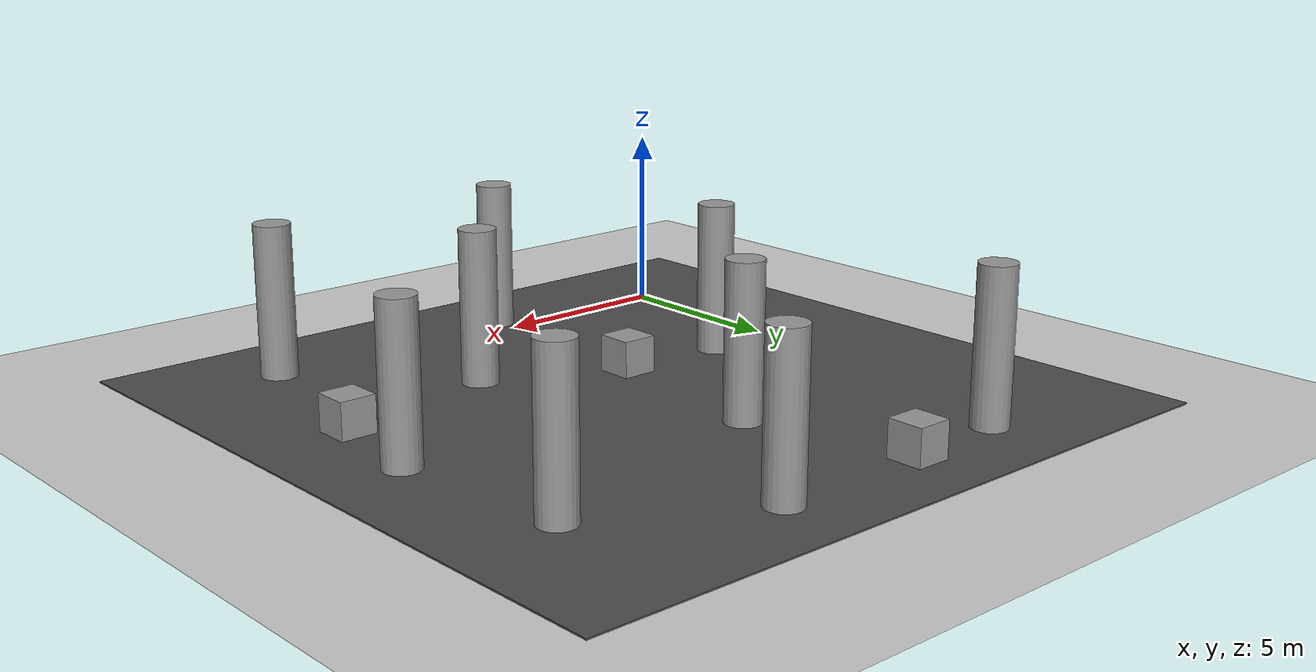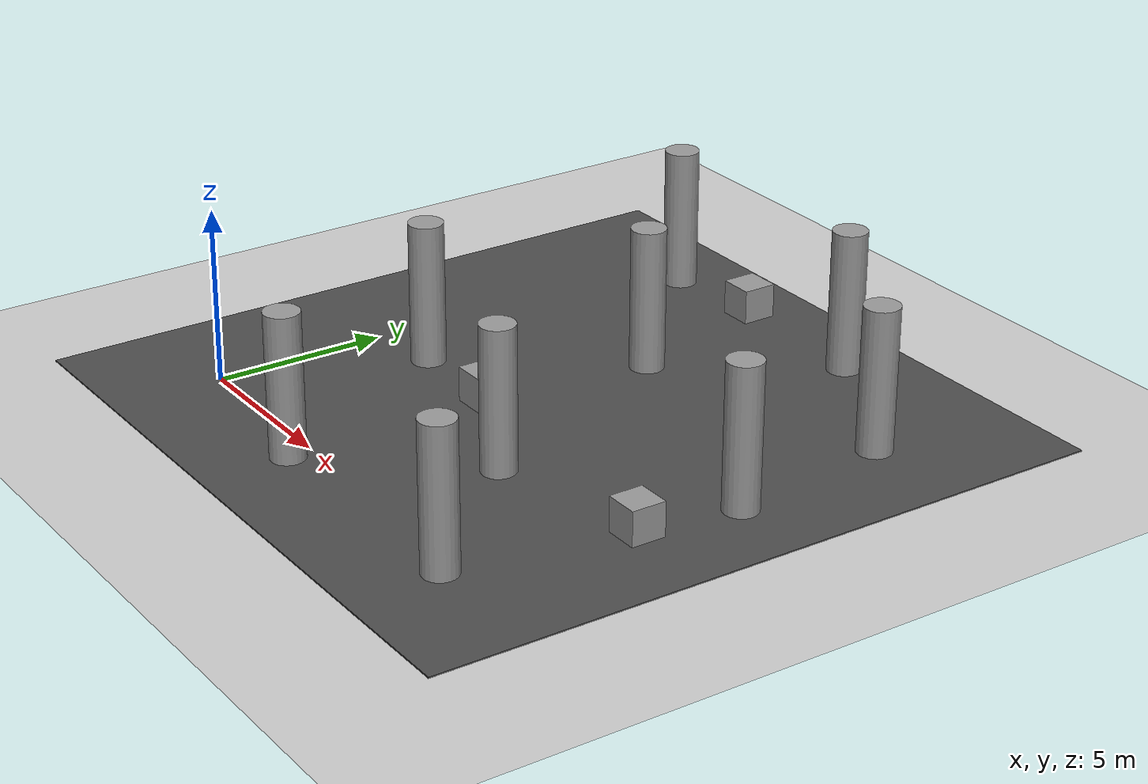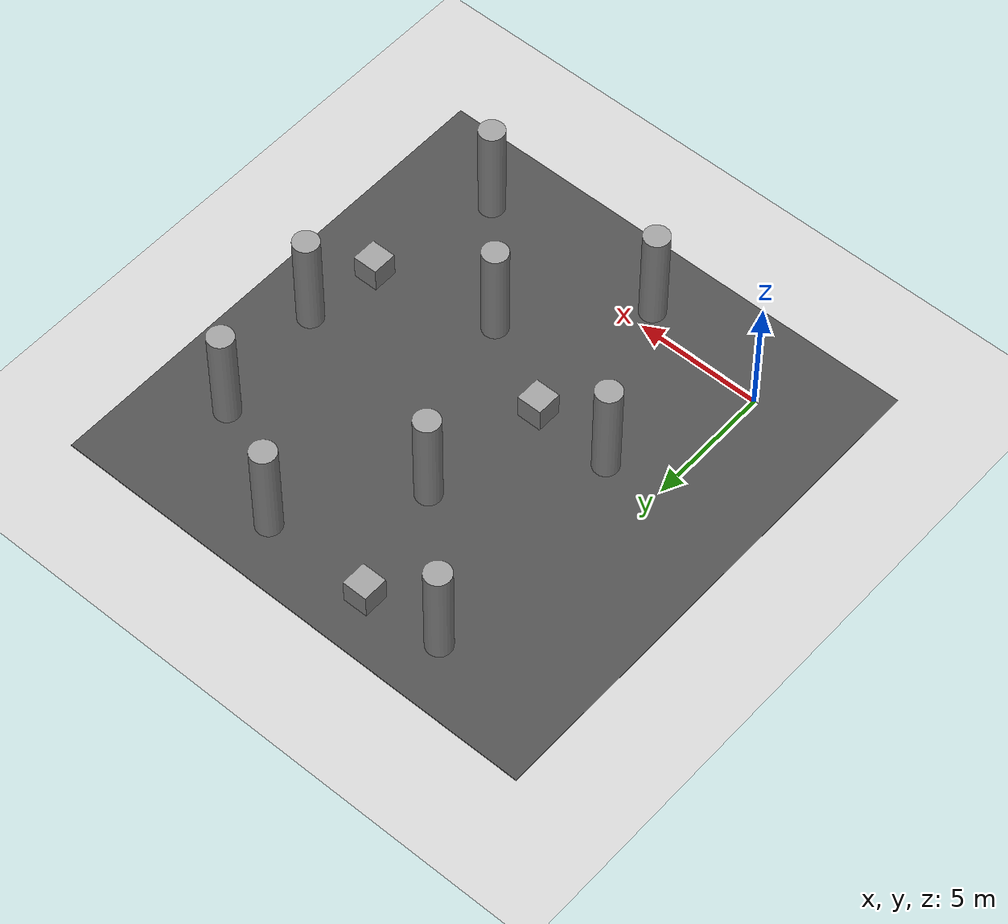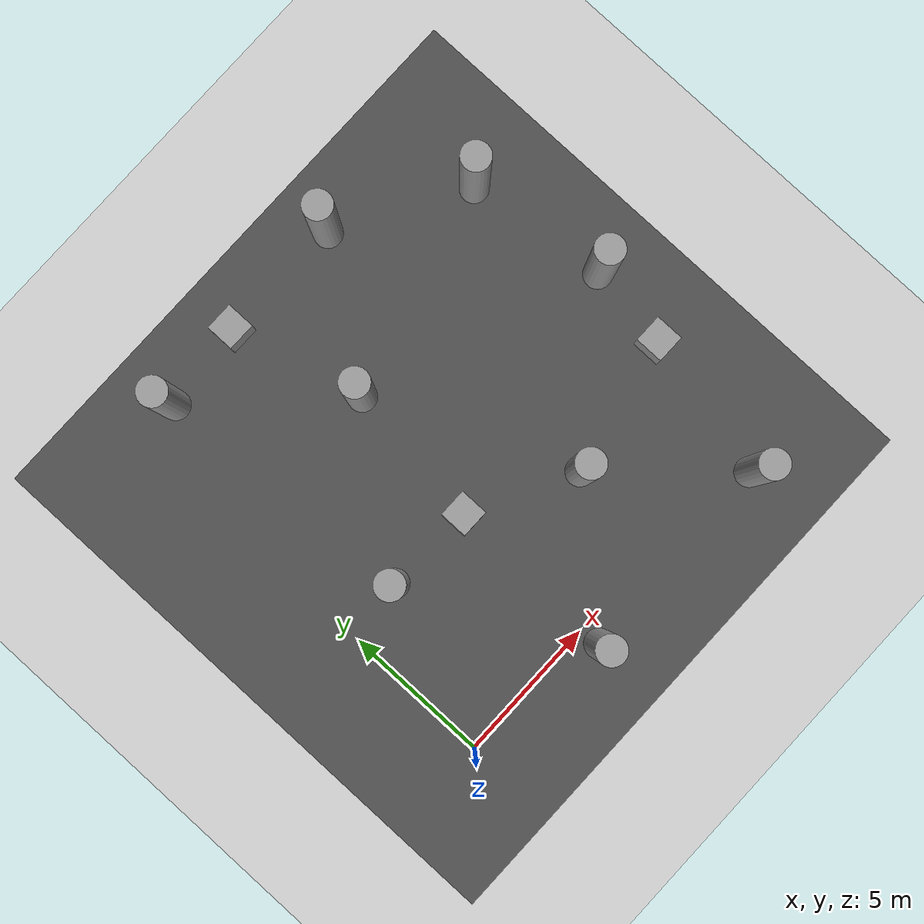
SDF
<sdf version="1.6">
 <world name="default">
  <light name="sun" type="directional">
   <cast_shadows>0</cast_shadows>
   <pose>0 0 10 0 -0 0</pose>
   <diffuse>0.8 0.8 0.8 1</diffuse>
   <specular>0.2 0.2 0.2 1</specular>
   <attenuation>
    <range>1000</range>
    <constant>0.9</constant>
    <linear>0.01</linear>
    <quadratic>0.001</quadratic>
   </attenuation>
   <direction>-0.5 0.1 -0.9</direction>
  </light>
  <model name="ground_plane">
   <static>1</static>
   <link name="link">
    <collision name="collision">
     <geometry><plane><normal>0 0 1</normal><size>100 100</size></plane></geometry>
     <surface><friction><ode><mu>100</mu><mu2>50</mu2></ode></friction></surface>
    </collision>
    <visual name="visual">
     <cast_shadows>0</cast_shadows>
     <geometry><plane><normal>0 0 1</normal><size>100 100</size></plane></geometry>
     <material>
      <script><uri>file://media/materials/scripts/gazebo.material</uri><name>Gazebo/Grey</name></script>
     </material>
    </visual>
   </link>
  </model>
  <gravity>0 0 -9.8</gravity>
  <magnetic_field>6e-06 2.3e-05 -4.2e-05</magnetic_field>
  <atmosphere type="adiabatic"/>
  <physics name="default_physics" default="0" type="ode">
   <max_step_size>0.001</max_step_size>
   <real_time_factor>1</real_time_factor>
   <real_time_update_rate>1000</real_time_update_rate>
  </physics>
  <scene><ambient>0.4 0.4 0.4 1</ambient><background>0.7 0.7 0.7 1</background><shadows>0</shadows></scene>
  <spherical_coordinates>
   <surface_model>EARTH_WGS84</surface_model>
   <latitude_deg>0</latitude_deg>
   <longitude_deg>0</longitude_deg>
   <elevation>0</elevation>
   <heading_deg>0</heading_deg>
  </spherical_coordinates>
  <model name="asphalt_plane">
   <static>1</static>
   <link name="link">
    <collision name="collision"><geometry><box><size>20 20 0.1</size></box></geometry></collision>
    <visual name="visual">
     <cast_shadows>0</cast_shadows>
     <geometry><box><size>20 20 0.1</size></box></geometry>
     <material>
      <script>
       <uri>model://asphalt_plane/materials/scripts</uri>
       <uri>model://asphalt_plane/materials/textures</uri>
       <name>vrc/asphalt</name>
      </script>
     </material>
    </visual>
   </link>
   <pose>6.31642 6.72384 -0.04 0 -0 0</pose>
  </model>
  <model name="unit_cylinder">
   <pose>2.117 5.40159 2.09282 1.1e-05 -4e-06 -0.000222</pose>
   <link name="link">
    <inertial>
     <mass>1</mass>
     <inertia><ixx>0.145833</ixx><ixy>0</ixy><ixz>0</ixz><iyy>0.145833</iyy><iyz>0</iyz><izz>0.125</izz></inertia>
    </inertial>
    <collision name="collision">
     <geometry><cylinder><radius>0.5</radius><length>4.16563</length></cylinder></geometry>
    </collision>
    <visual name="visual">
     <geometry><cylinder><radius>0.5</radius><length>4.16563</length></cylinder></geometry>
     <material>
      <script><name>Gazebo/Grey</name><uri>file://media/materials/scripts/gazebo.material</uri></script>
     </material>
    </visual>
   </link>
  </model>
  <model name="unit_cylinder_clone">
   <pose>8.80034 3.4356 2.09281 9e-06 -4e-06 -0.00023</pose>
   <link name="link">
    <inertial>
     <mass>1</mass>
     <inertia><ixx>0.145833</ixx><ixy>0</ixy><ixz>0</ixz><iyy>0.145833</iyy><iyz>0</iyz><izz>0.125</izz></inertia>
    </inertial>
    <collision name="collision">
     <geometry><cylinder><radius>0.5</radius><length>4.16563</length></cylinder></geometry>
    </collision>
    <visual name="visual">
     <geometry><cylinder><radius>0.5</radius><length>4.16563</length></cylinder></geometry>
     <material>
      <script><name>Gazebo/Grey</name><uri>file://media/materials/scripts/gazebo.material</uri></script>
     </material>
    </visual>
   </link>
  </model>
  <model name="unit_cylinder_clone_0">
   <pose>5.83145 10.2439 2.09281 -1e-06 -0 7.9e-05</pose>
   <link name="link">
    <inertial>
     <mass>1</mass>
     <inertia><ixx>0.145833</ixx><ixy>0</ixy><ixz>0</ixz><iyy>0.145833</iyy><iyz>0</iyz><izz>0.125</izz></inertia>
    </inertial>
    <collision name="collision">
     <geometry><cylinder><radius>0.5</radius><length>4.16563</length></cylinder></geometry>
    </collision>
    <visual name="visual">
     <geometry><cylinder><radius>0.5</radius><length>4.16563</length></cylinder></geometry>
     <material>
      <script><name>Gazebo/Grey</name><uri>file://media/materials/scripts/gazebo.material</uri></script>
     </material>
    </visual>
   </link>
  </model>
  <model name="unit_cylinder_clone_1">
   <pose>13.3159 12.1898 2.09281 0 -1e-06 0.000767</pose>
   <link name="link">
    <inertial>
     <mass>1</mass>
     <inertia><ixx>0.145833</ixx><ixy>0</ixy><ixz>0</ixz><iyy>0.145833</iyy><iyz>0</iyz><izz>0.125</izz></inertia>
    </inertial>
    <collision name="collision">
     <geometry><cylinder><radius>0.5</radius><length>4.16563</length></cylinder></geometry>
    </collision>
    <visual name="visual">
     <geometry><cylinder><radius>0.5</radius><length>4.16563</length></cylinder></geometry>
     <material>
      <script><name>Gazebo/Grey</name><uri>file://media/materials/scripts/gazebo.material</uri></script>
     </material>
    </visual>
   </link>
  </model>
  <model name="unit_cylinder_clone_clone">
   <pose>13.9433 7.32765 2.0928 0 -0 0.000395</pose>
   <link name="link">
    <inertial>
     <mass>1</mass>
     <inertia><ixx>0.145833</ixx><ixy>0</ixy><ixz>0</ixz><iyy>0.145833</iyy><iyz>0</iyz><izz>0.125</izz></inertia>
    </inertial>
    <collision name="collision">
     <geometry><cylinder><radius>0.5</radius><length>4.16563</length></cylinder></geometry>
    </collision>
    <visual name="visual">
     <geometry><cylinder><radius>0.5</radius><length>4.16563</length></cylinder></geometry>
     <material>
      <script><name>Gazebo/Grey</name><uri>file://media/materials/scripts/gazebo.material</uri></script>
     </material>
    </visual>
   </link>
  </model>
  <model name="unit_cylinder_clone_clone_0">
   <pose>1.5681 14.5031 2.09281 1e-06 0 -4.1e-05</pose>
   <link name="link">
    <inertial>
     <mass>1</mass>
     <inertia><ixx>0.145833</ixx><ixy>0</ixy><ixz>0</ixz><iyy>0.145833</iyy><iyz>0</iyz><izz>0.125</izz></inertia>
    </inertial>
    <collision name="collision">
     <geometry><cylinder><radius>0.5</radius><length>4.16563</length></cylinder></geometry>
    </collision>
    <visual name="visual">
     <geometry><cylinder><radius>0.5</radius><length>4.16563</length></cylinder></geometry>
     <material>
      <script><name>Gazebo/Grey</name><uri>file://media/materials/scripts/gazebo.material</uri></script>
     </material>
    </visual>
   </link>
  </model>
  <model name="unit_cylinder_clone_clone_1">
   <pose>9.01153 14.6925 2.09281 1e-06 -1e-06 0.000453</pose>
   <link name="link">
    <inertial>
     <mass>1</mass>
     <inertia><ixx>0.145833</ixx><ixy>0</ixy><ixz>0</ixz><iyy>0.145833</iyy><iyz>0</iyz><izz>0.125</izz></inertia>
    </inertial>
    <collision name="collision">
     <geometry><cylinder><radius>0.5</radius><length>4.16563</length></cylinder></geometry>
    </collision>
    <visual name="visual">
     <geometry><cylinder><radius>0.5</radius><length>4.16563</length></cylinder></geometry>
     <material>
      <script><name>Gazebo/Grey</name><uri>file://media/materials/scripts/gazebo.material</uri></script>
     </material>
    </visual>
   </link>
  </model>
  <model name="unit_cylinder_clone_clone_2">
   <pose>12.4657 -0.591042 2.09282 1.1e-05 -4e-06 -0.000204</pose>
   <link name="link">
    <inertial>
     <mass>1</mass>
     <inertia><ixx>0.145833</ixx><ixy>0</ixy><ixz>0</ixz><iyy>0.145833</iyy><iyz>0</iyz><izz>0.125</izz></inertia>
    </inertial>
    <collision name="collision">
     <geometry><cylinder><radius>0.5</radius><length>4.16563</length></cylinder></geometry>
    </collision>
    <visual name="visual">
     <geometry><cylinder><radius>0.5</radius><length>4.16563</length></cylinder></geometry>
     <material>
      <script><name>Gazebo/Grey</name><uri>file://media/materials/scripts/gazebo.material</uri></script>
     </material>
    </visual>
   </link>
  </model>
  <model name="unit_cylinder_clone_clone_3">
   <pose>5.12336 -0.711677 2.09282 1e-05 -4e-06 -0.00019</pose>
   <link name="link">
    <inertial>
     <mass>1</mass>
     <inertia><ixx>0.145833</ixx><ixy>0</ixy><ixz>0</ixz><iyy>0.145833</iyy><iyz>0</iyz><izz>0.125</izz></inertia>
    </inertial>
    <collision name="collision">
     <geometry><cylinder><radius>0.5</radius><length>4.16563</length></cylinder></geometry>
    </collision>
    <visual name="visual">
     <geometry><cylinder><radius>0.5</radius><length>4.16563</length></cylinder></geometry>
     <material>
      <script><name>Gazebo/Grey</name><uri>file://media/materials/scripts/gazebo.material</uri></script>
     </material>
    </visual>
   </link>
  </model>
  <model name="unit_box">
   <pose>5.24054 5.27226 0.51 0 -0 1e-06</pose>
   <link name="link">
    <inertial>
     <mass>1</mass>
     <inertia>
      <ixx>0.166667</ixx>
      <ixy>0</ixy>
      <ixz>0</ixz>
      <iyy>0.166667</iyy>
      <iyz>0</iyz>
      <izz>0.166667</izz>
     </inertia>
    </inertial>
    <collision name="collision"><geometry><box><size>1 1 1</size></box></geometry></collision>
    <visual name="visual">
     <geometry><box><size>1 1 1</size></box></geometry>
     <material>
      <script><name>Gazebo/Grey</name><uri>file://media/materials/scripts/gazebo.material</uri></script>
     </material>
    </visual>
   </link>
  </model>
  <model name="unit_box_0">
   <pose>4.60386 14.7569 0.51 0 -0 1e-06</pose>
   <link name="link">
    <inertial>
     <mass>1</mass>
     <inertia>
      <ixx>0.166667</ixx>
      <ixy>0</ixy>
      <ixz>0</ixz>
      <iyy>0.166667</iyy>
      <iyz>0</iyz>
      <izz>0.166667</izz>
     </inertia>
    </inertial>
    <collision name="collision"><geometry><box><size>1 1 1</size></box></geometry></collision>
    <visual name="visual">
     <geometry><box><size>1 1 1</size></box></geometry>
     <material>
      <script><name>Gazebo/Grey</name><uri>file://media/materials/scripts/gazebo.material</uri></script>
     </material>
    </visual>
   </link>
  </model>
  <model name="unit_box_1">
   <pose>13.5369 4.43548 0.51 0 -0 1e-06</pose>
   <link name="link">
    <inertial>
     <mass>1</mass>
     <inertia>
      <ixx>0.166667</ixx>
      <ixy>0</ixy>
      <ixz>0</ixz>
      <iyy>0.166667</iyy>
      <iyz>0</iyz>
      <izz>0.166667</izz>
     </inertia>
    </inertial>
    <collision name="collision"><geometry><box><size>1 1 1</size></box></geometry></collision>
    <visual name="visual">
     <geometry><box><size>1 1 1</size></box></geometry>
     <material>
      <script><name>Gazebo/Grey</name><uri>file://media/materials/scripts/gazebo.material</uri></script>
     </material>
    </visual>
   </link>
  </model>
 </world>
</sdf>
